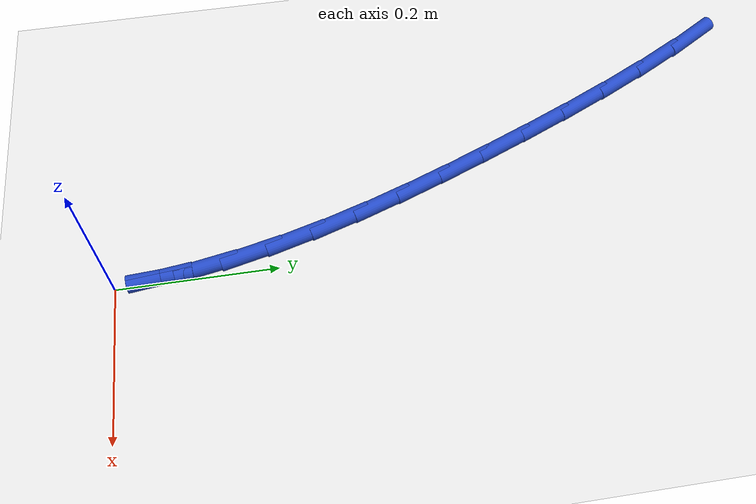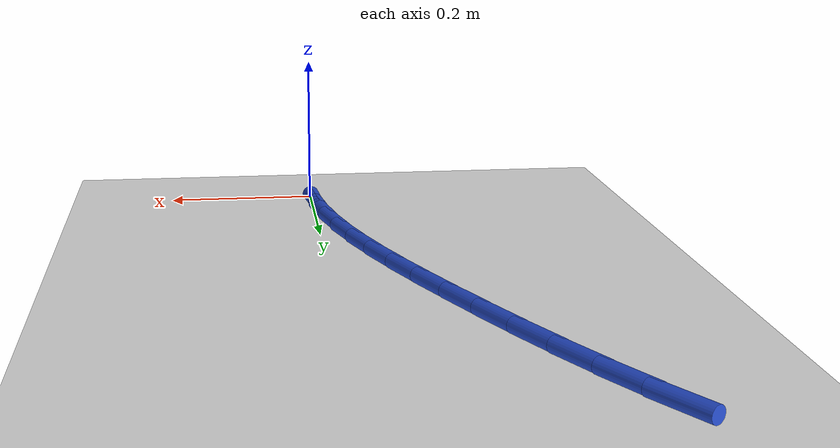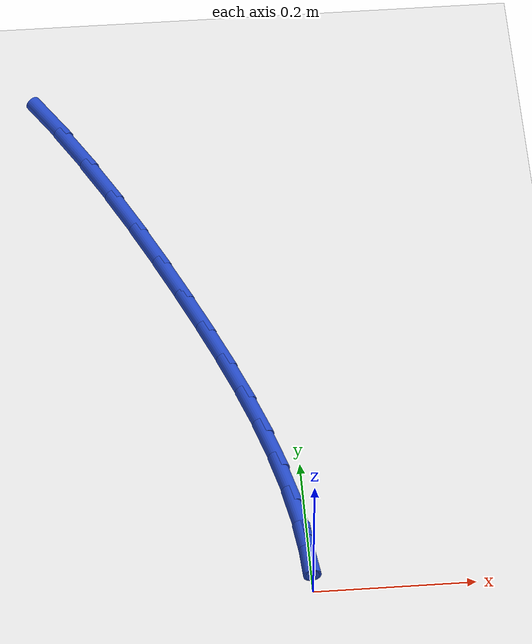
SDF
<sdf version="1.6">
 <world name="default">
  <model name="ground_plane">
   <static>1</static>
   <link name="link">
    <collision name="collision">
     <geometry><plane><normal>0 0 1</normal><size>100 100</size></plane></geometry>
     <surface><friction><ode><mu>100</mu><mu2>50</mu2></ode></friction></surface>
    </collision>
    <visual name="visual">
     <cast_shadows>0</cast_shadows>
     <geometry><plane><normal>0 0 1</normal><size>100 100</size></plane></geometry>
     <material>
      <script><uri>file://media/materials/scripts/gazebo.material</uri><name>Gazebo/WhiteGlow</name></script>
     </material>
    </visual>
   </link>
  </model>
  <model name="line">
   <link name="link_1">
    <pose>-0.0033161015010511434 0.05695103452125952 0.01 0 1.57 -1.4472683050981194</pose>
    <collision name="collision">
     <geometry><cylinder><radius>0.01</radius><length>0.08</length></cylinder></geometry>
    </collision>
    <visual name="visual">
     <material>
      <script><name>Gazebo/Blue</name><uri>file://media/materials/scripts/gazebo.material</uri></script>
     </material>
     <geometry><cylinder><radius>0.01</radius><length>0.08</length></cylinder></geometry>
    </visual>
   </link>
   <link name="link_2">
    <pose>-0.010297392693050878 0.11317913035090658 0.01 0 1.57 -1.3871724122174236</pose>
    <collision name="collision">
     <geometry><cylinder><radius>0.01</radius><length>0.08</length></cylinder></geometry>
    </collision>
    <visual name="visual">
     <material>
      <script><name>Gazebo/Blue</name><uri>file://media/materials/scripts/gazebo.material</uri></script>
     </material>
     <geometry><cylinder><radius>0.01</radius><length>0.08</length></cylinder></geometry>
    </visual>
   </link>
   <link name="link_3">
    <pose>-0.020652781641250156 0.16893842363906575 0.01 0 1.57 -1.333419042448566</pose>
    <collision name="collision">
     <geometry><cylinder><radius>0.01</radius><length>0.08</length></cylinder></geometry>
    </collision>
    <visual name="visual">
     <material>
      <script><name>Gazebo/Blue</name><uri>file://media/materials/scripts/gazebo.material</uri></script>
     </material>
     <geometry><cylinder><radius>0.01</radius><length>0.08</length></cylinder></geometry>
    </visual>
   </link>
   <link name="link_4">
    <pose>-0.034091176410899905 0.2244830505358616 0.01 0 1.57 -1.286699149119817</pose>
    <collision name="collision">
     <geometry><cylinder><radius>0.01</radius><length>0.08</length></cylinder></geometry>
    </collision>
    <visual name="visual">
     <material>
      <script><name>Gazebo/Blue</name><uri>file://media/materials/scripts/gazebo.material</uri></script>
     </material>
     <geometry><cylinder><radius>0.01</radius><length>0.08</length></cylinder></geometry>
    </visual>
   </link>
   <link name="link_5">
    <pose>-0.05032148506725103 0.2800671471914185 0.01 0 1.57 -1.247351837116483</pose>
    <collision name="collision">
     <geometry><cylinder><radius>0.01</radius><length>0.08</length></cylinder></geometry>
    </collision>
    <visual name="visual">
     <material>
      <script><name>Gazebo/Blue</name><uri>file://media/materials/scripts/gazebo.material</uri></script>
     </material>
     <geometry><cylinder><radius>0.01</radius><length>0.08</length></cylinder></geometry>
    </visual>
   </link>
   <link name="link_6">
    <pose>-0.0690526156755545 0.33594484975586125 0.01 0 1.57 -1.21542774363074</pose>
    <collision name="collision">
     <geometry><cylinder><radius>0.01</radius><length>0.08</length></cylinder></geometry>
    </collision>
    <visual name="visual">
     <material>
      <script><name>Gazebo/Blue</name><uri>file://media/materials/scripts/gazebo.material</uri></script>
     </material>
     <geometry><cylinder><radius>0.01</radius><length>0.08</length></cylinder></geometry>
    </visual>
   </link>
   <link name="link_7">
    <pose>-0.08999347630106116 0.3923702943793141 0.01 0 1.57 -1.1907635053740453</pose>
    <collision name="collision">
     <geometry><cylinder><radius>0.01</radius><length>0.08</length></cylinder></geometry>
    </collision>
    <visual name="visual">
     <material>
      <script><name>Gazebo/Blue</name><uri>file://media/materials/scripts/gazebo.material</uri></script>
     </material>
     <geometry><cylinder><radius>0.01</radius><length>0.08</length></cylinder></geometry>
    </visual>
   </link>
   <link name="link_8">
    <pose>-0.11285297500902203 0.4495976172119019 0.01 0 1.57 -1.1730466647727424</pose>
    <collision name="collision">
     <geometry><cylinder><radius>0.01</radius><length>0.08</length></cylinder></geometry>
    </collision>
    <visual name="visual">
     <material>
      <script><name>Gazebo/Blue</name><uri>file://media/materials/scripts/gazebo.material</uri></script>
     </material>
     <geometry><cylinder><radius>0.01</radius><length>0.08</length></cylinder></geometry>
    </visual>
   </link>
   <link name="link_9">
    <pose>-0.13734016010655173 0.5078805754172296 0.01 0 1.57 -1.1592841153843887</pose>
    <collision name="collision">
     <geometry><cylinder><radius>0.01</radius><length>0.08</length></cylinder></geometry>
    </collision>
    <visual name="visual">
     <material>
      <script><name>Gazebo/Blue</name><uri>file://media/materials/scripts/gazebo.material</uri></script>
     </material>
     <geometry><cylinder><radius>0.01</radius><length>0.08</length></cylinder></geometry>
    </visual>
   </link>
   <link name="link_10">
    <pose>-0.1632485001795947 0.5672447906595701 0.01 0 1.57 -1.142198038999762</pose>
    <collision name="collision">
     <geometry><cylinder><radius>0.01</radius><length>0.08</length></cylinder></geometry>
    </collision>
    <visual name="visual">
     <material>
      <script><name>Gazebo/Blue</name><uri>file://media/materials/scripts/gazebo.material</uri></script>
     </material>
     <geometry><cylinder><radius>0.01</radius><length>0.08</length></cylinder></geometry>
    </visual>
   </link>
   <link name="link_11">
    <pose>-0.1905987006655517 0.6271018047483025 0.01 0 1.57 -1.1203616553125082</pose>
    <collision name="collision">
     <geometry><cylinder><radius>0.01</radius><length>0.08</length></cylinder></geometry>
    </collision>
    <visual name="visual">
     <material>
      <script><name>Gazebo/Blue</name><uri>file://media/materials/scripts/gazebo.material</uri></script>
     </material>
     <geometry><cylinder><radius>0.01</radius><length>0.08</length></cylinder></geometry>
    </visual>
   </link>
   <link name="link_12">
    <pose>-0.21944931239763585 0.6867608869299722 0.01 0 1.57 -1.093302205783085</pose>
    <collision name="collision">
     <geometry><cylinder><radius>0.01</radius><length>0.08</length></cylinder></geometry>
    </collision>
    <visual name="visual">
     <material>
      <script><name>Gazebo/Blue</name><uri>file://media/materials/scripts/gazebo.material</uri></script>
     </material>
     <geometry><cylinder><radius>0.01</radius><length>0.08</length></cylinder></geometry>
    </visual>
   </link>
   <link name="link_13">
    <pose>-0.24985888620905994 0.7455313064511249 0.01 0 1.57 -1.0603065126694975</pose>
    <collision name="collision">
     <geometry><cylinder><radius>0.01</radius><length>0.08</length></cylinder></geometry>
    </collision>
    <visual name="visual">
     <material>
      <script><name>Gazebo/Blue</name><uri>file://media/materials/scripts/gazebo.material</uri></script>
     </material>
     <geometry><cylinder><radius>0.01</radius><length>0.08</length></cylinder></geometry>
    </visual>
   </link>
   <link name="link_14">
    <pose>-0.2818859729330367 0.8027223325583056 0.01 0 1.57 -1.020388052892561</pose>
    <collision name="collision">
     <geometry><cylinder><radius>0.01</radius><length>0.08</length></cylinder></geometry>
    </collision>
    <visual name="visual">
     <material>
      <script><name>Gazebo/Blue</name><uri>file://media/materials/scripts/gazebo.material</uri></script>
     </material>
     <geometry><cylinder><radius>0.01</radius><length>0.08</length></cylinder></geometry>
    </visual>
   </link>
   <link name="link_121">
    <pose>-0.0033778554576415556 0.05684082970943344 0.01 0 1.57 -1.511439565798957</pose>
    <collision name="collision">
     <geometry><cylinder><radius>0.01</radius><length>0.08</length></cylinder></geometry>
    </collision>
    <visual name="visual">
     <material>
      <script><name>Gazebo/Blue</name><uri>file://media/materials/scripts/gazebo.material</uri></script>
     </material>
     <geometry><cylinder><radius>0.01</radius><length>0.08</length></cylinder></geometry>
    </visual>
   </link>
  </model>
 </world>
</sdf>
